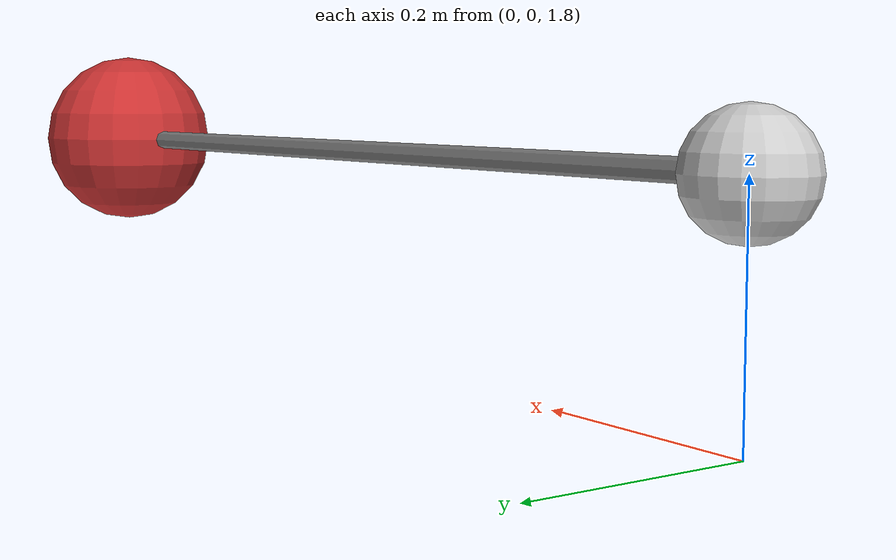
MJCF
<mujoco model="mass_spring_system">
  <!-- Task guidance: The red sphere is attached to an anchor by the spring-like constraint. Disturb the sphere and sample its position or velocity over time before choosing the numeric motion code. -->
    <option gravity="0 0 -9.81"/>

    <worldbody>
        <light diffuse=".5 .5 .5" pos="0 0 3" dir="0 0 -1"/>
        <geom type="plane" size="5 5 0.1" rgba=".9 .9 .9 1"/>

        <body name="object_1" pos="0 0 2">
            <geom type="sphere" size="0.05" rgba="0.8 0.8 0.8 1"/>
            <joint type="free" name="object_1_joint"/>
            <site name="anchor_site" pos="0 0 0" size="0.01"/>
        </body>

        <body name="object_2" pos="1 0 2">
            <joint type="free" name="object_2_joint"/>
            <geom type="sphere" size="0.1" mass="1" rgba="0.8 0.2 0.2 1"/>
            <site name="mass_site" pos="0 0 0" size="0.01"/>
        </body>
    </worldbody>

    <tendon>
        <spatial limited="true" range="0 2" width="0.01">
            <site site="anchor_site"/>
            <site site="mass_site"/>
        </spatial>
    </tendon>

    <equality>
        <connect anchor="0 0 0" body1="object_1" body2="object_2" solimp="0.95 0.99 0.001" solref="0.01 1"/>
    </equality>

    <actuator>
        <motor site="mass_site" gear="1 0 0 0 0 0" name="force_actuator"/>
    </actuator>

    <sensor>
        <framepos objtype="site" objname="mass_site"/>
        <framelinvel objtype="site" objname="mass_site"/>
    </sensor>
</mujoco>
